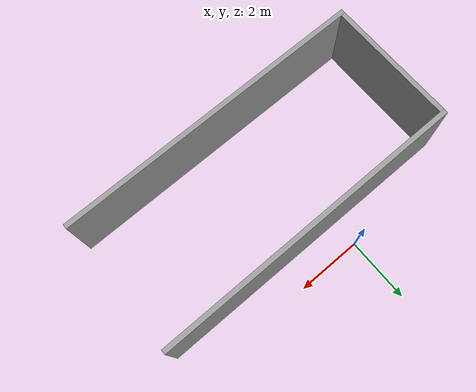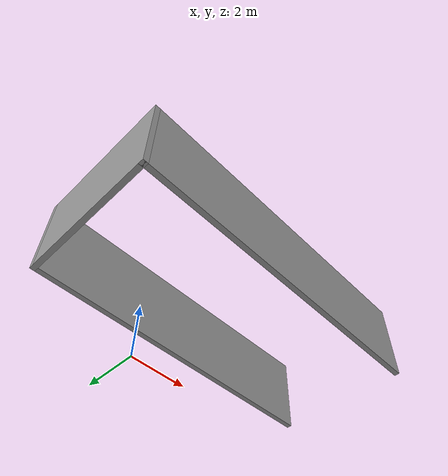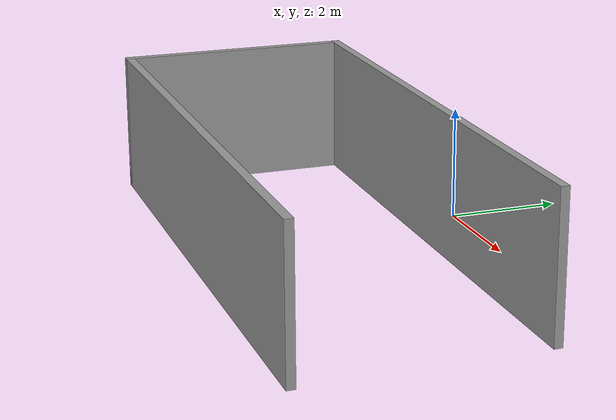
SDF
<?xml version='1.0'?>
<sdf version='1.6'>
  <model name='XorY'>
    <pose frame=''>1.07 -2.97 0 0 -0 0</pose>
    <link name='Wall_3'>
      <collision name='Wall_3_Collision'>
        <geometry>
          <box>
            <size>9.75 0.15 2.5</size>
          </box>
        </geometry>
        <pose frame=''>0 0 1.25 0 -0 0</pose>
      </collision>
      <visual name='Wall_3_Visual'>
        <pose frame=''>0 0 1.25 0 -0 0</pose>
        <geometry>
          <box>
            <size>9.75 0.15 2.5</size>
          </box>
        </geometry>
        <material>
          <script>
            <uri>file://media/materials/scripts/gazebo.material</uri>
            <name>Gazebo/Grey</name>
          </script>
          <ambient>1 1 1 1</ambient>
        </material>
        <meta>
          <layer>0</layer>
        </meta>
      </visual>
      <pose frame=''>0 2.05 0 0 -0 3.14159</pose>
    </link>
    <link name='Wall_4'>
      <collision name='Wall_4_Collision'>
        <geometry>
          <box>
            <size>4.25 0.15 2.5</size>
          </box>
        </geometry>
        <pose frame=''>0 0 1.25 0 -0 0</pose>
      </collision>
      <visual name='Wall_4_Visual'>
        <pose frame=''>0 0 1.25 0 -0 0</pose>
        <geometry>
          <box>
            <size>4.25 0.15 2.5</size>
          </box>
        </geometry>
        <material>
          <script>
            <uri>file://media/materials/scripts/gazebo.material</uri>
            <name>Gazebo/Grey</name>
          </script>
          <ambient>1 1 1 1</ambient>
        </material>
        <meta>
          <layer>0</layer>
        </meta>
      </visual>
      <pose frame=''>-4.8 0 0 0 -0 -1.5708</pose>
    </link>
    <link name='Wall_5'>
      <collision name='Wall_5_Collision'>
        <geometry>
          <box>
            <size>9.75 0.15 2.5</size>
          </box>
        </geometry>
        <pose frame=''>0 0 1.25 0 -0 0</pose>
      </collision>
      <visual name='Wall_5_Visual'>
        <pose frame=''>0 0 1.25 0 -0 0</pose>
        <geometry>
          <box>
            <size>9.75 0.15 2.5</size>
          </box>
        </geometry>
        <material>
          <script>
            <uri>file://media/materials/scripts/gazebo.material</uri>
            <name>Gazebo/Grey</name>
          </script>
          <ambient>1 1 1 1</ambient>
        </material>
        <meta>
          <layer>0</layer>
        </meta>
      </visual>
      <pose frame=''>0 -2.05 0 0 -0 0</pose>
    </link>
    <static>1</static>
  </model>
</sdf>
